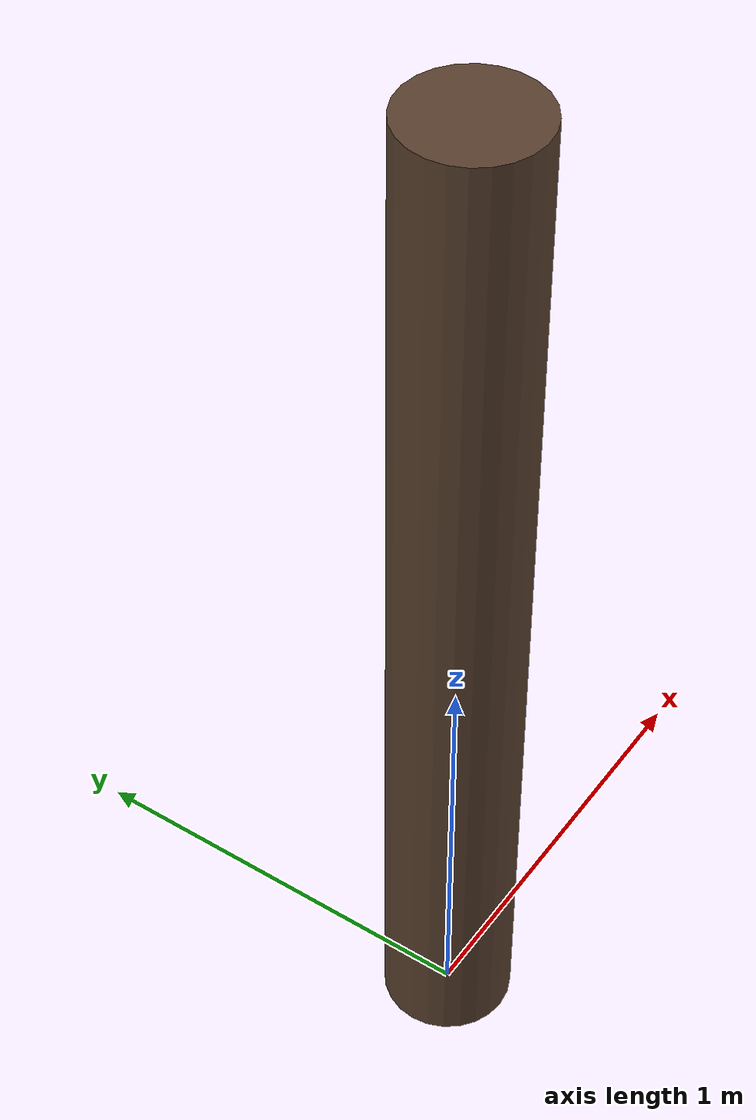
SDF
<?xml version="1.0"?>
<sdf version="1.6">
  <model name="tree_trunk">
    <static>true</static>
    <link name="link">
      <collision name="trunk_collision">
        <!-- Make the obstacle tall enough for VLP-16 (mounted ~1.0m high) to observe reliably. -->
        <pose>0 0 1.25 0 0 0</pose>
        <geometry>
          <cylinder>
            <radius>0.15</radius>
            <length>2.50</length>
          </cylinder>
        </geometry>
      </collision>
      <visual name="trunk_visual">
        <pose>0 0 1.25 0 0 0</pose>
        <geometry>
          <cylinder>
            <radius>0.15</radius>
            <length>2.50</length>
          </cylinder>
        </geometry>
        <material>
          <ambient>0.25 0.18 0.12 1</ambient>
          <diffuse>0.35 0.25 0.18 1</diffuse>
        </material>
      </visual>
    </link>
  </model>
</sdf>
